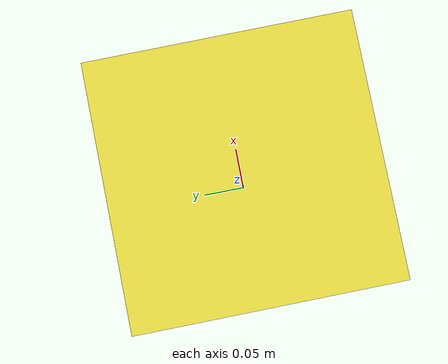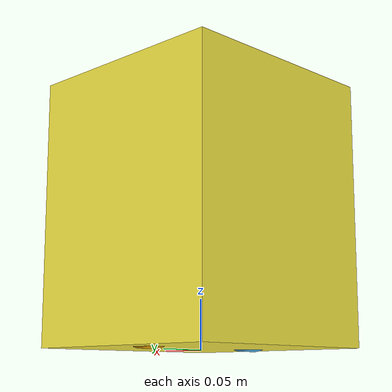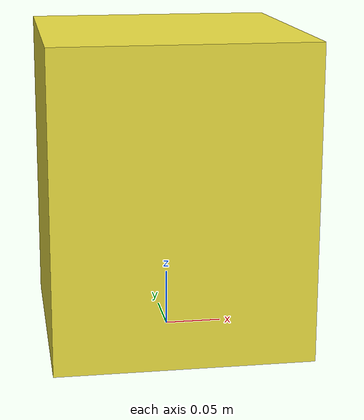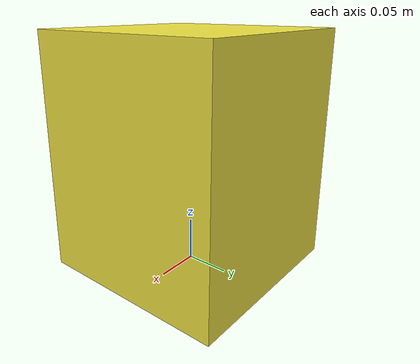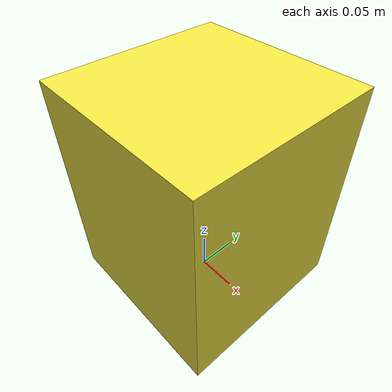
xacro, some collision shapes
<?xml version="1.0"?>
<robot xmlns:xacro="http://www.ros.org/wiki/xacro" name="cube_petit_v3">
  <!-- General -->

  <xacro:arg name="robot_namespace" default="cube_petit_orange"/>
  <xacro:property name="robot_ns" value="$(arg robot_namespace)"/>

  <link name="${robot_ns}/base_link"/>
  <joint name="body_joint" type="fixed">
    <parent link="${robot_ns}/base_link"/>
    <child link="body_link"/>
    <origin rpy="0 0 0" xyz="0 0 0"/>
  </joint>

  <link name="base_link_reverse"/>
  <joint name="base_link_reverse_joint" type="fixed">
    <parent link="${robot_ns}/base_link"/>
    <child link="base_link_reverse"/>
    <origin rpy="0 0 3.1415926" xyz="0 0 0"/>
  </joint>

  <link name="respeaker_base"/>
  <joint name="respeaker_joint" type="fixed">
    <parent link="${robot_ns}/base_link"/>
    <child link="respeaker_base"/>
    <origin rpy="0 0 0" xyz="0 0 0.28"/>
  </joint>

  <link name="body_link">
    <visual>
      <origin rpy="0 0 0" xyz="0 0 0"/>
      <geometry>
        <mesh filename="file://$(find cube_petit_description)/meshes/cube_petit/body/cube_petit_v2_body.obj"/>
      </geometry>
    </visual>
    <collision>
      <origin rpy="0 0 0" xyz="0 0 0.13725"/>
      <geometry>
        <box size="0.221 0.2225 0.2705"/>
      </geometry>
    </collision>
    <inertial>
      <origin rpy="0 0 0" xyz="0.00440023 0.00053314 0.15283194"/>
      <mass value="1.98239086"/>
      <inertia ixx="0.02351680" ixy="0.00001868" iyy="0.02505713" ixz="-0.00012952" iyz="-0.00004728" izz="0.02060399"/>
    </inertial>
  </link>
  <gazebo reference="body_link">
    <selfCollide>false</selfCollide>
    <maxContacts>4</maxContacts>
    <mu1 value="0.0"/>
    <kp value="150000"/>
    <kd value="0"/>
  </gazebo>

  <link name="connector_link"/>
  <joint name="connector_joint" type="fixed">
    <parent link="${robot_ns}/base_link"/>
    <child link="connector_link"/>
    <origin rpy="0 0 3.14" xyz="-0.11 0 0.025"/>
  </joint>
  <xacro:include filename="$(find cube_petit_description)/xacro/sensors/lidar.xacro"/>

  <joint name="depth_joint" type="fixed">
    <parent link="body_link"/>
    <child link="camera_link"/>
    <origin rpy="0 0.0034 0" xyz="0.10137 -0.006 0.097793"/>
  </joint>
  <link name="camera_link">
    <inertial>
      <origin rpy="0 0 0" xyz="0.00000000 0.00000000 0.0000000"/>
      <mass value="0.11166745"/>
      <inertia ixx="0.004391" ixy="0.000000" iyy="0.004391" ixz="0.000000" iyz="0.000000" izz="0.004277"/>
    </inertial>
    <visual>
      <origin rpy="0 0 0" xyz="0 0 0"/>
      <geometry>
        <cylinder length="0.001" radius="0.001"/>
      </geometry>
    </visual>
    <collision>
      <origin rpy="0 0 0" xyz="0 0 0"/>
      <geometry>
        <cylinder length="0.001" radius="0.001"/>
      </geometry>
    </collision>
  </link>
  <joint name="depth_optical_joint" type="fixed">
    <parent link="camera_link"/>
    <child link="camera_depth_optical_frame"/>
    <origin rpy="-1.57 0 -1.57" xyz="0.0 0.0 0.0"/>
  </joint>
  <link name="camera_depth_optical_frame">
    <inertial>
      <origin rpy="0 0 0" xyz="0.00000000 0.00000000 0.0000000"/>
      <mass value="0.11166745"/>
      <inertia ixx="0.004391" ixy="0.000000" iyy="0.004391" ixz="0.000000" iyz="0.000000" izz="0.004277"/>
    </inertial>
    <visual>
      <origin rpy="0 0 0" xyz="0 0 0"/>
      <geometry>
        <cylinder length="0.001" radius="0.001"/>
      </geometry>
    </visual>
    <collision>
      <origin rpy="0 0 0" xyz="0 0 0"/>
      <geometry>
        <cylinder length="0.001" radius="0.001"/>
      </geometry>
    </collision>
  </link>

  <!-- rear camera -->

  <joint name="left_wheel_joint" type="continuous">
    <origin rpy="0 0 0" xyz="-0.000985 0.070150 0.0325"/>
    <parent link="body_link"/>
    <child link="left_wheel_link"/>
    <axis xyz="0 1 0"/>
  </joint>
  <transmission name="left_wheel_trans" type="SimpleTransmission">
    <type>transmission_interface/SimpleTransmission</type>
    <actuator name="left_wheel_motor">
      <mechanicalReduction>1</mechanicalReduction>
    </actuator>
    <joint name="left_wheel_joint">
      <hardwareInterface>hardware_interface/VelocityJointInterface</hardwareInterface>
    </joint>
  </transmission>
  <link name="left_wheel_link">
    <inertial>
      <origin rpy="0 0 0" xyz="-0.00000147 0.00093592 -0.00000239"/>
      <mass value="0.2986774"/>
      <inertia ixx="0.0001147" ixy="0.00000000" iyy="0.0002130" ixz="0.00000000" iyz="0.0000001" izz="0.0001148"/>
    </inertial>
    <visual>
      <origin rpy="-1.57079632679 0 3.1415926" xyz="0 0 0"/>
      <geometry>
        <mesh filename="file://$(find cube_petit_description)/meshes/cube_petit/wheels/tamiya_wheel.obj"/>
      </geometry>
    </visual>
    <collision>
      <origin rpy="1.57079632679 0 3.1415926" xyz="0 0 0"/>
      <geometry>
        <cylinder length="0.002" radius="0.0325"/>
      </geometry>
    </collision>
  </link>
  <gazebo reference="left_wheel_link">
    <selfCollide>false</selfCollide>
    <maxContacts>2</maxContacts>
    <minDepth>0</minDepth>
    <mu1 value="2.5"/>
    <kp value="50000"/>
    <kd value="0"/>
  </gazebo>

  <joint name="right_wheel_joint" type="continuous">
    <origin rpy="0 0 0" xyz="-0.000985 -0.070150 0.0325"/>
    <parent link="body_link"/>
    <child link="right_wheel_link"/>
    <axis xyz="0 -1 0"/>
  </joint>
  <transmission name="right_wheel_trans" type="SimpleTransmission">
    <type>transmission_interface/SimpleTransmission</type>
    <actuator name="right_wheel_motor">
      <mechanicalReduction>1</mechanicalReduction>
    </actuator>
    <joint name="right_wheel_joint">
      <hardwareInterface>hardware_interface/VelocityJointInterface</hardwareInterface>
    </joint>
  </transmission>
  <link name="right_wheel_link">
    <inertial>
      <origin rpy="0 0 0" xyz="-0.00000147 0.00093592 -0.00000239"/>
      <mass value="0.2986774"/>
      <inertia ixx="0.0001147" ixy="0.00000000" iyy="0.0002130" ixz="0.00000000" iyz="0.0000001" izz="0.0001148"/>
    </inertial>
    <visual>
      <origin rpy="1.57079632679 0 3.1415926" xyz="0 0 0"/>
      <geometry>
        <mesh filename="file://$(find cube_petit_description)/meshes/cube_petit/wheels/tamiya_wheel.obj"/>
      </geometry>
    </visual>
    <collision>
      <origin rpy="1.57079632679 0 3.1415926" xyz="0 0 0"/>
      <geometry>
        <cylinder length="0.002" radius="0.0325"/>
      </geometry>
    </collision>
  </link>
  <gazebo reference="right_wheel_link">
    <selfCollide>false</selfCollide>
    <maxContacts>2</maxContacts>
    <minDepth>0</minDepth>
    <mu1 value="2.5"/>
    <kp value="50000"/>
    <kd value="0"/>
  </gazebo>

  <ros2_control name="CubepetitSystem" type="system">
    <hardware>
      <plugin>dji_ros_controller/M2006Ros2</plugin>
    </hardware>
    <joint name="right_wheel_joint">
      <command_interface name="velocity">
        <param name="min">-6</param>
        <param name="max">6</param>
      </command_interface>
      <state_interface name="position"/>
      <state_interface name="velocity"/>
    </joint>
    <joint name="left_wheel_joint">
      <command_interface name="velocity">
        <param name="min">-6</param>
        <param name="max">6</param>
      </command_interface>
      <state_interface name="position"/>
      <state_interface name="velocity"/>
    </joint>
  </ros2_control>

</robot>

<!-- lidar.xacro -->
<robot xmlns:xacro="http://ros.org/wiki/xacro">
  <joint name="laser_joint" type="fixed">
    <parent link="body_link"/>
    <child link="pacecat_link"/>
    <origin rpy="0 0 0" xyz="0.0 0 0.23975"/>
  </joint>
  <link name="pacecat_link">
    <inertial>
      <origin rpy="0 0 0" xyz="0.00000000 0.00000000 0.00208424"/>
      <mass value="0.11166745"/>
      <inertia ixx="0.004391" ixy="0.000000" iyy="0.004391" ixz="0.000000" iyz="0.000000" izz="0.004277"/>
    </inertial>
    <visual>
      <origin rpy="0 0 0" xyz="0 0 0"/>
      <geometry>
        <cylinder length="0.0315" radius="0.025"/>
      </geometry>
    </visual>
    <collision>
      <origin rpy="0 0 0" xyz="0 0 0"/>
      <geometry>
        <cylinder length="0.0315" radius="0.025"/>
      </geometry>
    </collision>
  </link>
  <gazebo reference="pacecat_link">
    <mu1 value="0.5"/>
    <kp value="50000"/>
    <kd value="0"/>
    <sensor type="gpu_ray" name="pacecat">
      <alwaysOn>true</alwaysOn>
      <pose>0 0 0 0 0 0</pose>
      <visualize>true</visualize>
      <update_rate>10</update_rate>
      <ray>
        <scan>
          <horizontal>
            <samples>400</samples>
            <resolution>1</resolution>
            <min_angle>${radians(-180)}</min_angle>
            <max_angle>${radians( 180)}</max_angle>
          </horizontal>
        </scan>
        <range>
          <min>0.16</min>
          <max>20.0</max>
          <resolution>0.01</resolution>
        </range>
        <noise>
          <type>gaussian</type>
          <mean>0.0</mean>
          <stddev>0.01</stddev>
        </noise>
      </ray>
      <plugin name="gazebo_ros_laser" filename="libgazebo_ros_ray_sensor.so">
        <ros>
          <namespace>/pacecat</namespace>
          <remapping>~/out:=/laser/scan</remapping>
        </ros>
        <output_type>sensor_msgs/LaserScan</output_type>
        <frame_name>pacecat_link</frame_name>
      </plugin>
    </sensor>
  </gazebo>
</robot>
